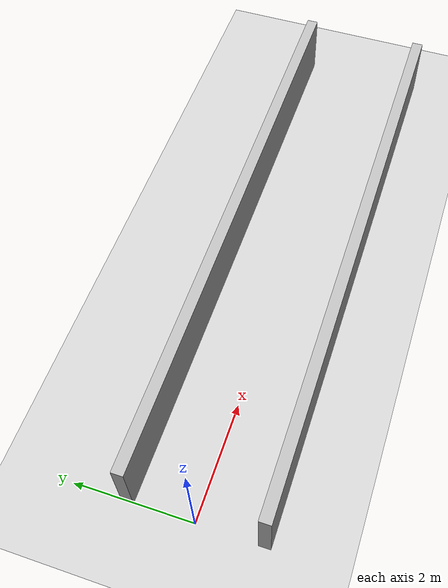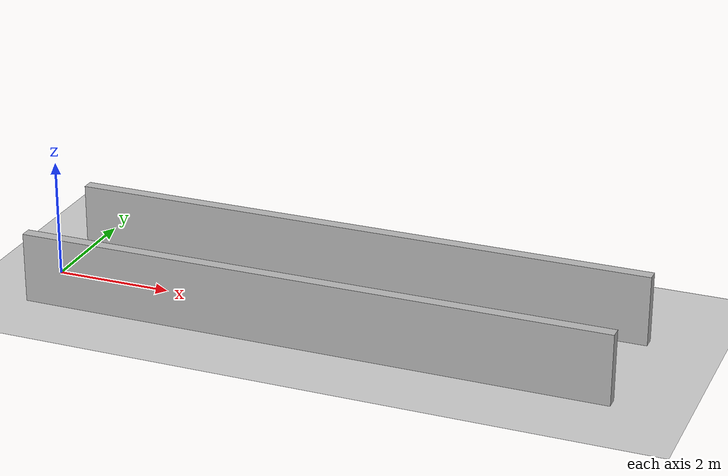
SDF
<?xml version="1.0"?>
<sdf version="1.6">
  <world name="v2-04e4-corridor-s4734">
    <gravity>0 0 -9.81</gravity>
    <physics name="v2_deterministic" type="ode">
      <max_step_size>0.002</max_step_size>
      <real_time_update_rate>500</real_time_update_rate>
    </physics>
    <include>
      <uri>model://sun</uri>
    </include>
    <include>
      <uri>model://ground_plane</uri>
    </include>
    <model name="corridor-left">
      <static>true</static>
      <pose>4.989682890 1.102543845 0.600000000 0 0 0.000664979</pose>
      <link name="link">
        <collision name="collision">
          <geometry>
            <box>
              <size>10.000000 0.200000 1.200000</size>
            </box>
          </geometry>
        </collision>
        <visual name="visual">
          <geometry>
            <box>
              <size>10.000000 0.200000 1.200000</size>
            </box>
          </geometry>
        </visual>
      </link>
    </model>
    <model name="corridor-right">
      <static>true</static>
      <pose>4.989971686 -1.087162116 0.600000000 0 0 0.001398199</pose>
      <link name="link">
        <collision name="collision">
          <geometry>
            <box>
              <size>10.000000 0.200000 1.200000</size>
            </box>
          </geometry>
        </collision>
        <visual name="visual">
          <geometry>
            <box>
              <size>10.000000 0.200000 1.200000</size>
            </box>
          </geometry>
        </visual>
      </link>
    </model>
  </world>
</sdf>
